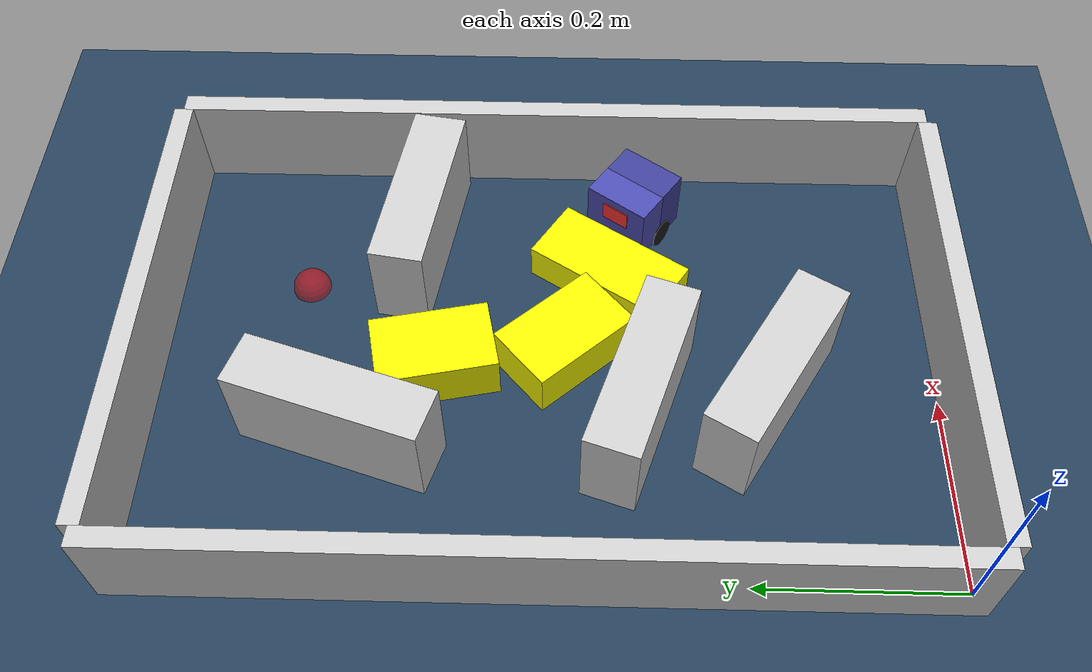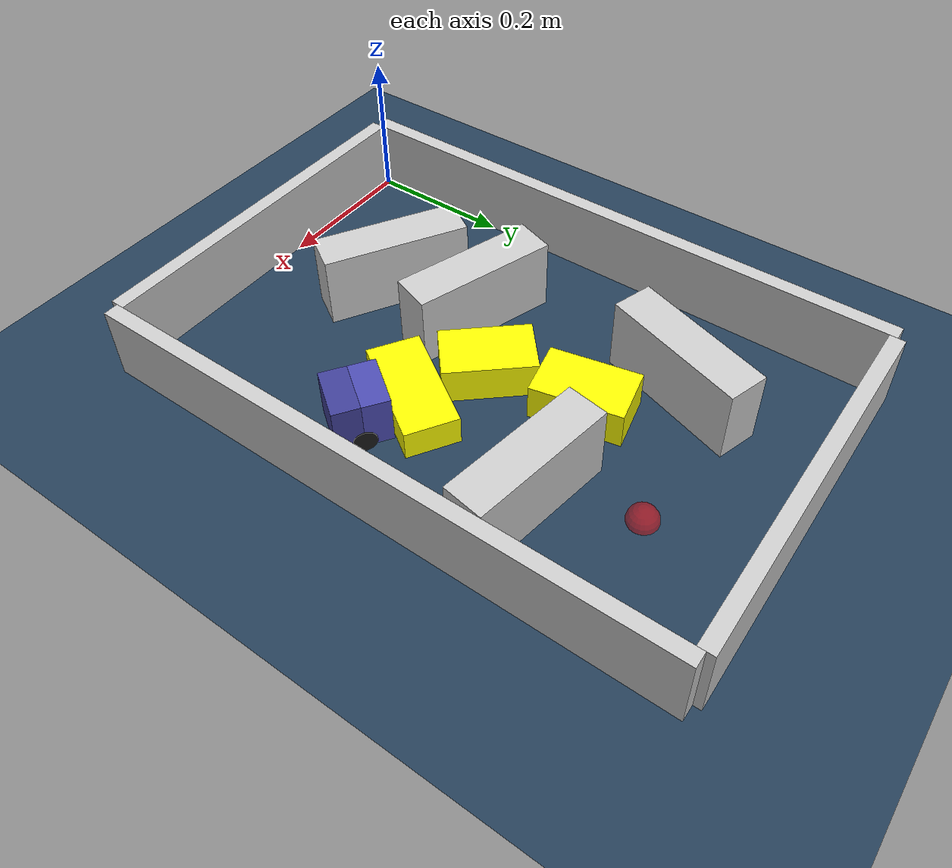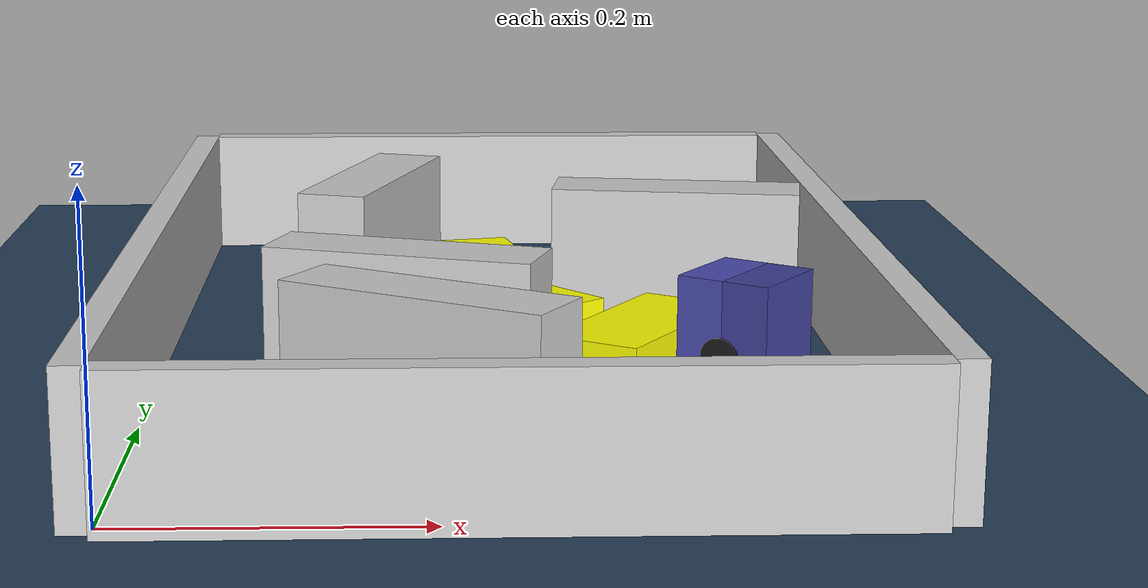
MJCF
<?xml version='1.0' encoding='utf-8'?>
<mujoco model="real_buildable">
  <compiler angle="degree" />
  <option timestep="0.002" integrator="implicitfast" iterations="100" cone="elliptic" />
  <default>
    <geom density="1" />
  </default>
  <asset>
    <texture builtin="gradient" height="3072" rgb1="0.3 0.5 0.7" rgb2="0 0 0" type="skybox" width="512" />
    <texture builtin="checker" height="300" mark="edge" markrgb="0.8 0.8 0.8" name="groundplane" rgb1="0.2 0.3 0.4" rgb2="0.1 0.2 0.3" type="2d" width="300" />
    <material name="groundplane" reflectance="0.2" texrepeat="5 5" texture="groundplane" texuniform="true" />
  </asset>
  <worldbody>
    <light dir="0 0 -1" directional="true" pos="0 0 1.5" />
    <geom name="floor" type="plane" condim="4" friction="0.5 0.005 0.001" material="groundplane" size="0 0 0.05" />
    <body name="walls">
      <geom name="wall_boundary_left" type="box" condim="4" friction="1.0 0.005 0.0001" rgba="0.8 0.8 0.8 1" pos="-0.010000 0.387500 0.050000" euler="0 0 0.000000" size="0.010000 0.397500 0.050000" />
      <geom name="wall_boundary_right" type="box" condim="4" friction="1.0 0.005 0.0001" rgba="0.8 0.8 0.8 1" pos="0.500000 0.387500 0.050000" euler="0 0 0.000000" size="0.010000 0.397500 0.050000" />
      <geom name="wall_boundary_bottom" type="box" condim="4" friction="1.0 0.005 0.0001" rgba="0.8 0.8 0.8 1" pos="0.245000 -0.010000 0.050000" euler="0 0 0.000000" size="0.245000 0.010000 0.050000" />
      <geom name="wall_boundary_top" type="box" condim="4" friction="1.0 0.005 0.0001" rgba="0.8 0.8 0.8 1" pos="0.245000 0.785000 0.050000" euler="0 0 0.000000" size="0.245000 0.010000 0.050000" />
      <geom name="wall_inner_1" type="box" condim="4" friction="1.0 0.005 0.0001" rgba="0.8 0.8 0.8 1" pos="0.191549 0.172272 0.050000" euler="0 0 -31.119121" size="0.097500 0.027500 0.050000" />
      <geom name="wall_inner_2" type="box" condim="4" friction="1.0 0.005 0.0001" rgba="0.8 0.8 0.8 1" pos="0.176347 0.297541 0.050000" euler="0 0 -18.430544" size="0.097500 0.027500 0.050000" />
      <geom name="wall_inner_3" type="box" condim="4" friction="1.0 0.005 0.0001" rgba="0.8 0.8 0.8 1" pos="0.389000 0.524000 0.050000" euler="0 0 170.900000" size="0.097500 0.027500 0.050000" />
      <geom name="wall_inner_4" type="box" condim="4" friction="1.0 0.005 0.0001" rgba="0.8 0.8 0.8 1" pos="0.144000 0.585000 0.050000" euler="0 0 72.200000" size="0.097500 0.027500 0.050000" />
    </body>
    <body name="car" pos="0.41443083927258567 0.30074747111478894 0.01" quat="0.30296279980012131 0 0 0.95300238296515905">
      <freejoint name="car_freejoint" />
      <inertial pos="0 0 0.0375" mass="0.35" diaginertia="0.000266 0.000266 0.000286" />
      <geom name="front_chassis_collision" type="box" pos="0.0175 0 0.0375" size="0.0175 0.035 0.0325" rgba="0.3 0.3 0.7 1" />
      <geom name="rear_chassis_collision" type="box" pos="-0.0175 0 0.0375" size="0.0175 0.035 0.0325" rgba="0.25 0.25 0.6 1" />
      <geom name="front_marker" type="box" pos="0.034 0 0.0505" size="0.002 0.015 0.01" rgba="1 0.2 0.2 1" contype="0" conaffinity="0" />
      <body name="rear_support_body" pos="-0.03 0 0.0025">
        <joint name="rear_caster_joint" type="ball" damping="0.0001" />
        <inertial pos="0 0 0" mass="0.025" diaginertia="0.000001 0.000001 0.000001" />
        <geom name="rear_support" type="sphere" pos="0 0 0" size="0.0025" friction="0 0 0" rgba="0.7 0.1 0.1 1" />
      </body>
      <body name="front_support_body" pos="0.03 0 0.0025">
        <joint name="front_caster_joint" type="ball" damping="0.0001" />
        <inertial pos="0 0 0" mass="0.025" diaginertia="0.000001 0.000001 0.000001" />
        <geom name="front_support" type="sphere" pos="0 0 0" size="0.0025" friction="0 0 0" rgba="0.1 0.7 0.1 1" />
      </body>
      <body name="left_wheel" pos="0 0.0375 0.015">
        <inertial pos="0 0 0" mass="0.05" diaginertia="0.000003 0.000006 0.000003" />
        <joint name="left_wheel_joint" type="hinge" axis="0 1 0" damping="0.01" armature="0.0001" />
        <geom name="left_wheel_collision" type="cylinder" size="0.015 0.0005" euler="90 0 0" rgba="0.1 0.1 0.1 1" />
      </body>
      <body name="right_wheel" pos="0 -0.0375 0.015">
        <inertial pos="0 0 0" mass="0.05" diaginertia="0.000003 0.000006 0.000003" />
        <joint name="right_wheel_joint" type="hinge" axis="0 1 0" damping="0.01" armature="0.0001" />
        <geom name="right_wheel_collision" type="cylinder" size="0.015 0.0005" euler="90 0 0" rgba="0.1 0.1 0.1 1" />
      </body>
    </body>
    <body name="obstacle_0_movable">
      <geom name="obstacle_0_movable" condim="4" pos="0.34396163152213877 0.32610491440585249 0.02" friction="1 0.005 0.0001" rgba="1 1 0 1" size="0.035000 0.075000 0.020000" type="box" mass="0.1" quat="0.28128712980444143 0 0 0.95962365050387299" />
      <joint type="free" />
    </body>
    <body name="obstacle_1_movable">
      <geom name="obstacle_1_movable" condim="4" pos="0.22854277160482195 0.50026360896293642 0.025000000000000001" friction="1 0.005 0.0001" rgba="1 1 0 1" size="0.037500 0.060000 0.025000" type="box" mass="0.1" quat="0.99461798162120241 0 0 0.10361018596530729" />
      <joint type="free" />
    </body>
    <body name="obstacle_2_movable">
      <geom name="obstacle_2_movable" condim="4" pos="0.25058748732543701 0.37142772066779822 0.025000000000000001" friction="1 0.005 0.0001" rgba="1 1 0 1" size="0.037500 0.060000 0.025000" type="box" mass="0.1" quat="0.93606344254142371 0 0 0.35183125435000612" />
      <joint type="free" />
    </body>
    <site name="goal" type="sphere" pos="0.330000 0.640000 0.0" size="0.02" rgba="1 0 0 0.5" />
  </worldbody>
  <actuator>
    <velocity name="left_wheel_drive" joint="left_wheel_joint" ctrlrange="-25 25" kv="0.75" forcerange="-0.5 0.5" />
    <velocity name="right_wheel_drive" joint="right_wheel_joint" ctrlrange="-25 25" kv="0.75" forcerange="-0.5 0.5" />
  </actuator>
</mujoco>
